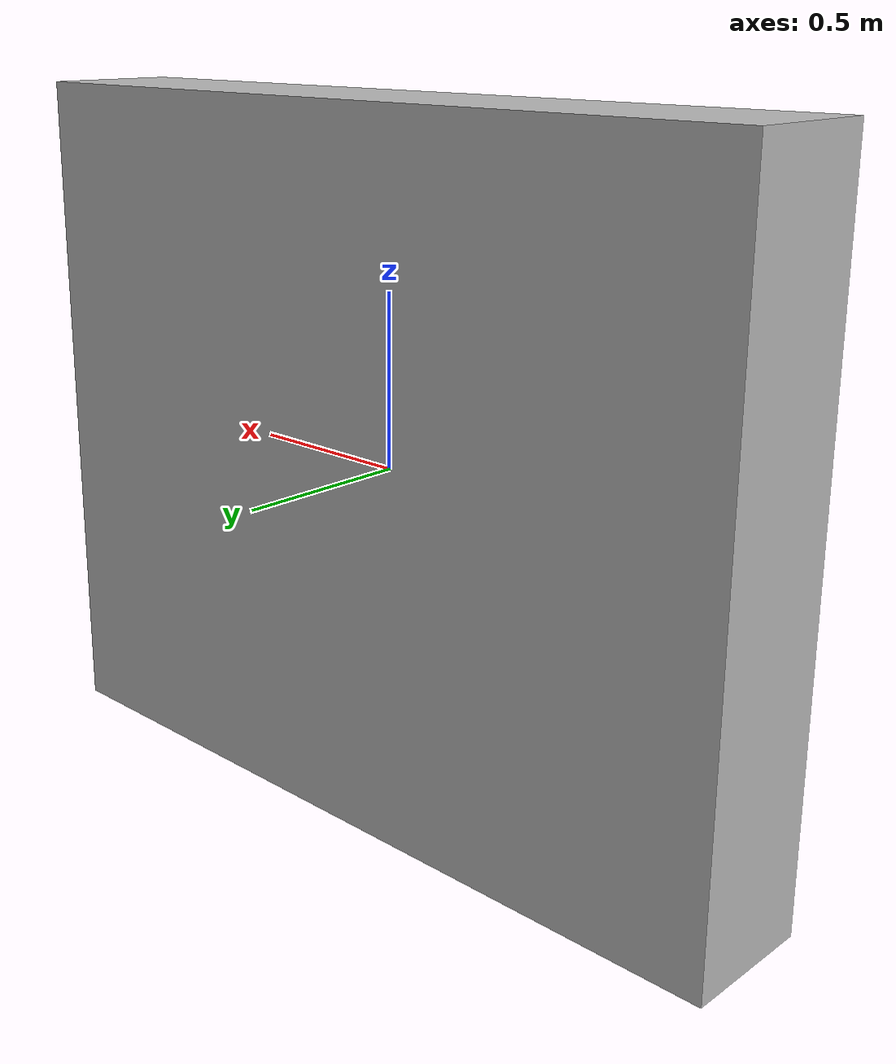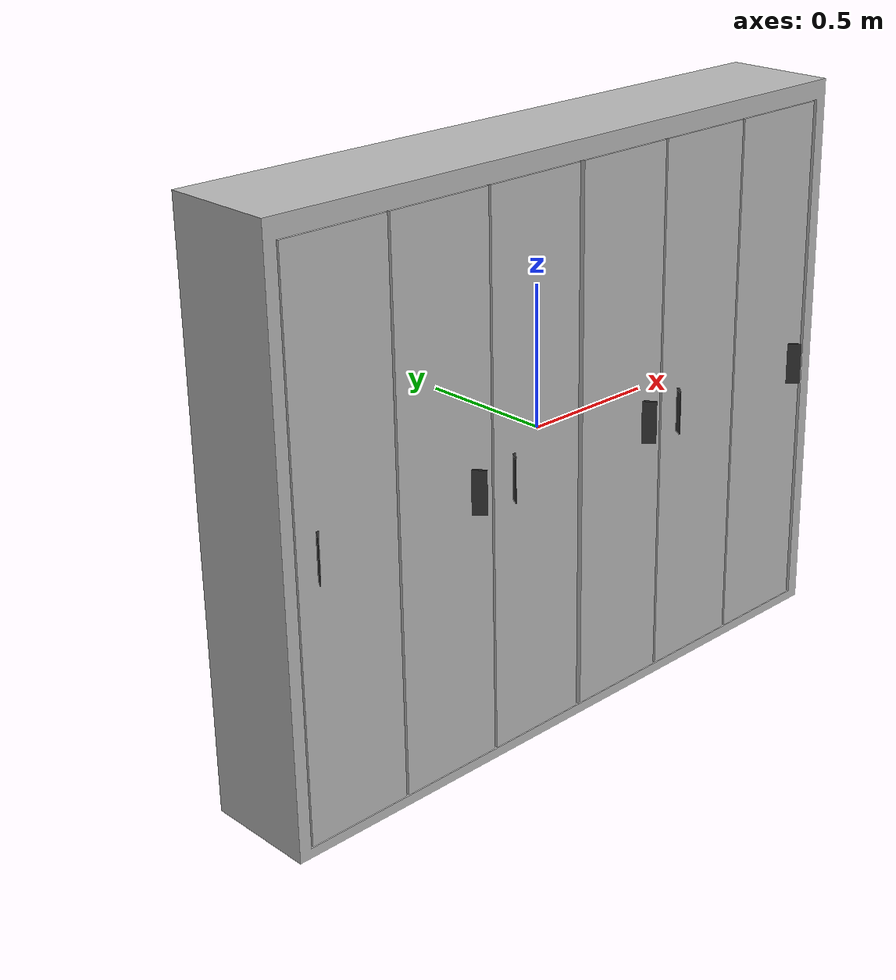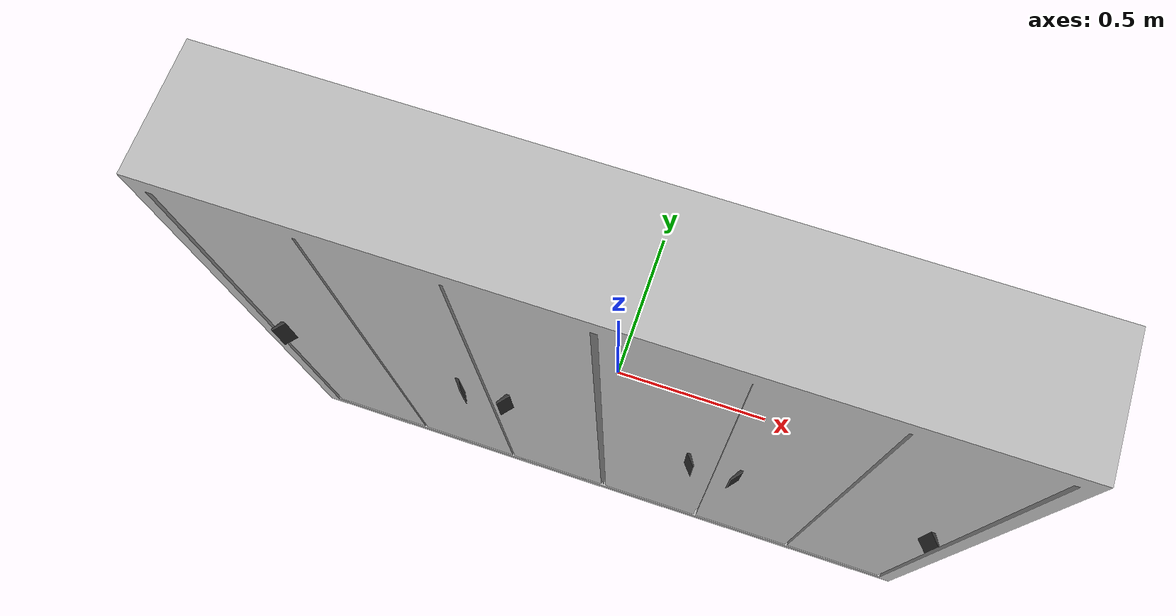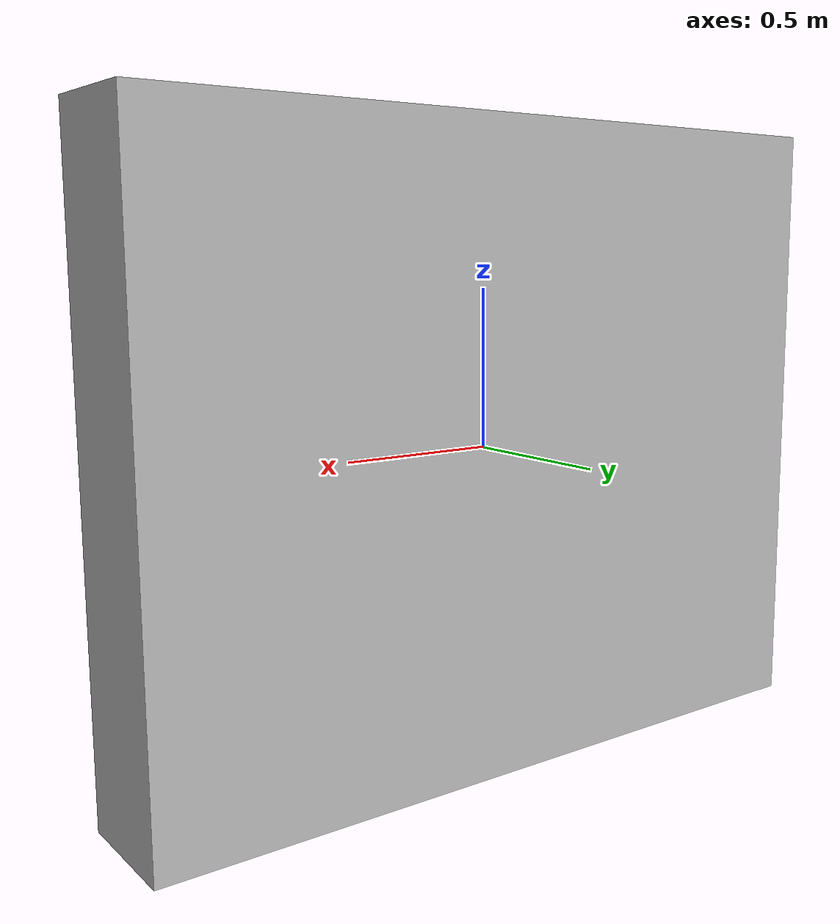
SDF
<?xml version='1.0'?>
<sdf version='1.5'>
    <model name="414_wardbrode">
        <pose>0 0 0 0 0 0</pose>
        <static>false</static>
        <link name='model_body'>
            <visual name="visual">
                <geometry>
                    <mesh>
                        <uri>model://rs_gazebo/meshes/ss_hq4/414_wardbrode/414_wardbrode_visual.dae</uri>
                        <scale>1 1 1</scale>
                    </mesh>
                </geometry>
            </visual>

            <collision name="collision">
                <geometry>
                    <box>
                        <size> 2.45 0.4 2 </size>
                    </box>
                </geometry>
            </collision>

            <inertial>
                <pose> 0 0 0 0 0 0</pose>
                <inertia>
                    <ixx>10.4</ixx>
                    <ixy>0</ixy>
                    <ixz>0</ixz>
                    <iyy>25.00625</iyy>
                    <iyz>0</iyz>
                    <izz>15.40625</izz>
                </inertia>
                <mass>30.0</mass>
            </inertial>
        </link>
    </model>
</sdf>
